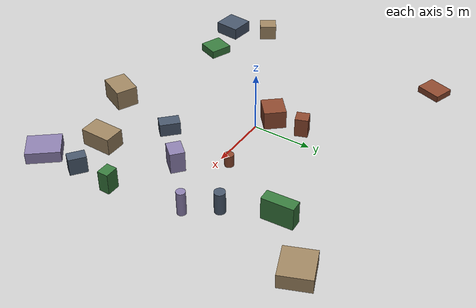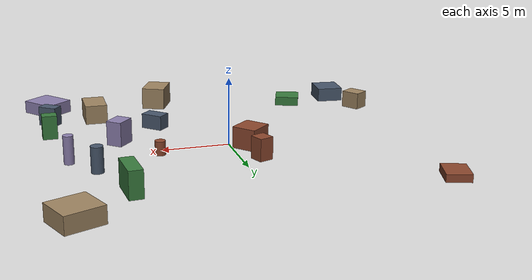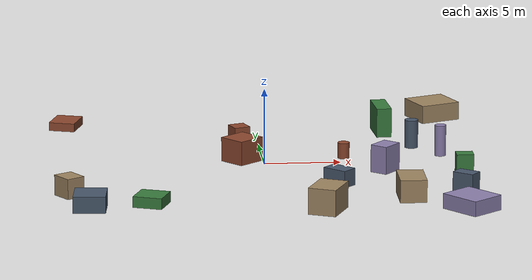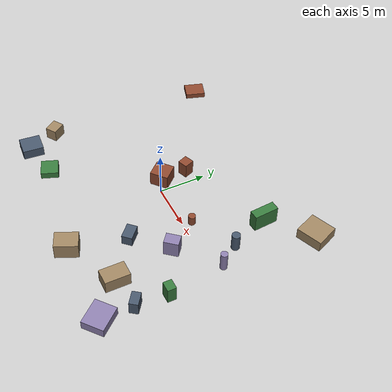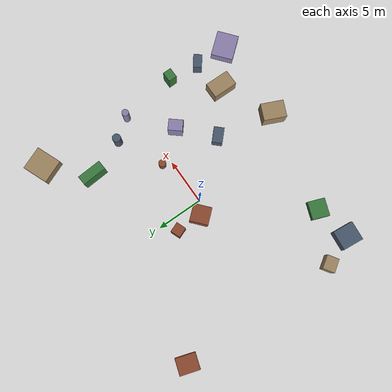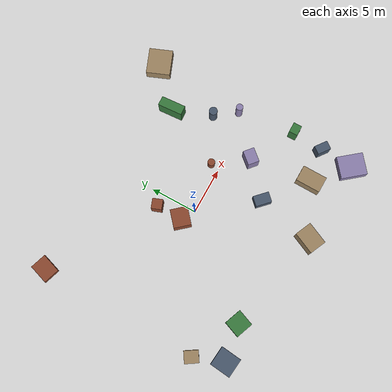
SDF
<sdf version="1.10">
 <world name="robotx_task1_uav_view">
  <gravity>0 0 -9.81</gravity>
  <physics name="physics" type="ode">
   <max_step_size>0.002</max_step_size>
   <real_time_factor>1.0</real_time_factor>
  </physics>
  <scene>
   <ambient>0.18 0.22 0.18 1.0</ambient>
   <background>0.35 0.55 0.40 1.0</background>
   <shadows>true</shadows>
   <grid>false</grid>
  </scene>
  <light name="sun" type="directional">
   <pose>0 0 300 0 0 0</pose>
   <diffuse>0.55 0.75 0.60 1.0</diffuse>
   <specular>0.28 0.45 0.32 1.0</specular>
   <direction>0.20 -0.06 -1.0</direction>
   <attenuation>
    <range>2500</range>
    <constant>0.85</constant>
    <linear>0.001</linear>
    <quadratic>0.00005</quadratic>
   </attenuation>
  </light>
  <plugin filename="gz-sim-physics-system" name="gz::sim::systems::Physics"/>
  <plugin filename="gz-sim-user-commands-system" name="gz::sim::systems::UserCommands"/>
  <plugin filename="gz-sim-scene-broadcaster-system" name="gz::sim::systems::SceneBroadcaster"/>
  <plugin filename="gz-sim-sensors-system" name="gz::sim::systems::Sensors">
   <render_engine>ogre2</render_engine>
  </plugin>
  <model name="scene_clutter_box_000">
   <static>true</static>
   <pose>12.336 11.165 0.623 0 0 -2.758723</pose>
   <link name="link">
    <visual name="v">
     <geometry><box><size>2.773 2.550 1.206</size></box></geometry>
     <material><ambient>0.45 0.38 0.32 1.0</ambient><diffuse>0.62 0.52 0.38 1.0</diffuse></material>
    </visual>
   </link>
  </model>
  <model name="scene_clutter_box_001">
   <static>true</static>
   <pose>-11.743 -10.054 0.562 0 0 -1.673037</pose>
   <link name="link">
    <visual name="v">
     <geometry><box><size>2.229 2.056 1.084</size></box></geometry>
     <material><ambient>0.18 0.22 0.28 1.0</ambient><diffuse>0.28 0.34 0.42 1.0</diffuse></material>
    </visual>
   </link>
  </model>
  <model name="scene_clutter_box_002">
   <static>true</static>
   <pose>-12.567 10.422 0.299 0 0 2.825719</pose>
   <link name="link">
    <visual name="v">
     <geometry><box><size>1.748 2.131 0.557</size></box></geometry>
     <material><ambient>0.35 0.16 0.12 1.0</ambient><diffuse>0.55 0.28 0.18 1.0</diffuse></material>
    </visual>
   </link>
  </model>
  <model name="scene_clutter_box_003">
   <static>true</static>
   <pose>-7.858 -9.418 0.378 0 0 2.776772</pose>
   <link name="link">
    <visual name="v">
     <geometry><box><size>1.898 1.848 0.715</size></box></geometry>
     <material><ambient>0.12 0.30 0.14 1.0</ambient><diffuse>0.22 0.48 0.24 1.0</diffuse></material>
    </visual>
   </link>
  </model>
  <model name="scene_clutter_box_004">
   <static>true</static>
   <pose>7.661 -2.432 0.927 0 0 0.864272</pose>
   <link name="link">
    <visual name="v">
     <geometry><box><size>1.532 1.198 1.815</size></box></geometry>
     <material><ambient>0.40 0.35 0.50 1.0</ambient><diffuse>0.55 0.50 0.68 1.0</diffuse></material>
    </visual>
   </link>
  </model>
  <model name="scene_clutter_box_005">
   <static>true</static>
   <pose>8.632 -8.985 0.750 0 0 -1.580799</pose>
   <link name="link">
    <visual name="v">
     <geometry><box><size>2.638 1.702 1.461</size></box></geometry>
     <material><ambient>0.45 0.38 0.32 1.0</ambient><diffuse>0.62 0.52 0.38 1.0</diffuse></material>
    </visual>
   </link>
  </model>
  <model name="scene_clutter_box_006">
   <static>true</static>
   <pose>4.387 -5.545 0.580 0 0 0.803129</pose>
   <link name="link">
    <visual name="v">
     <geometry><box><size>1.100 1.696 1.121</size></box></geometry>
     <material><ambient>0.18 0.22 0.28 1.0</ambient><diffuse>0.28 0.34 0.42 1.0</diffuse></material>
    </visual>
   </link>
  </model>
  <model name="scene_clutter_cyl_007">
   <static>true</static>
   <pose>5.293 0.944 0.572 0 0 -2.639756</pose>
   <link name="link">
    <visual name="v">
     <geometry><cylinder><radius>0.383</radius><length>1.043</length></cylinder></geometry>
     <material><ambient>0.35 0.16 0.12 1.0</ambient><diffuse>0.55 0.28 0.18 1.0</diffuse></material>
    </visual>
   </link>
  </model>
  <model name="scene_clutter_box_008">
   <static>true</static>
   <pose>8.444 7.424 0.992 0 0 -3.074564</pose>
   <link name="link">
    <visual name="v">
     <geometry><box><size>0.992 2.623 1.944</size></box></geometry>
     <material><ambient>0.12 0.30 0.14 1.0</ambient><diffuse>0.22 0.48 0.24 1.0</diffuse></material>
    </visual>
   </link>
  </model>
  <model name="scene_clutter_cyl_009">
   <static>true</static>
   <pose>11.686 1.098 1.072 0 0 -1.071349</pose>
   <link name="link">
    <visual name="v">
     <geometry><cylinder><radius>0.367</radius><length>2.045</length></cylinder></geometry>
     <material><ambient>0.40 0.35 0.50 1.0</ambient><diffuse>0.55 0.50 0.68 1.0</diffuse></material>
    </visual>
   </link>
  </model>
  <model name="scene_clutter_box_010">
   <static>true</static>
   <pose>-12.940 -6.859 0.684 0 0 -2.567814</pose>
   <link name="link">
    <visual name="v">
     <geometry><box><size>1.260 1.481 1.328</size></box></geometry>
     <material><ambient>0.45 0.38 0.32 1.0</ambient><diffuse>0.62 0.52 0.38 1.0</diffuse></material>
    </visual>
   </link>
  </model>
  <model name="scene_clutter_box_011">
   <static>true</static>
   <pose>12.179 -8.477 0.758 0 0 0.923093</pose>
   <link name="link">
    <visual name="v">
     <geometry><box><size>0.924 1.444 1.476</size></box></geometry>
     <material><ambient>0.18 0.22 0.28 1.0</ambient><diffuse>0.28 0.34 0.42 1.0</diffuse></material>
    </visual>
   </link>
  </model>
  <model name="scene_clutter_box_012">
   <static>true</static>
   <pose>-1.392 0.835 0.819 0 0 -0.856105</pose>
   <link name="link">
    <visual name="v">
     <geometry><box><size>1.840 1.954 1.598</size></box></geometry>
     <material><ambient>0.35 0.16 0.12 1.0</ambient><diffuse>0.55 0.28 0.18 1.0</diffuse></material>
    </visual>
   </link>
  </model>
  <model name="scene_clutter_box_013">
   <static>true</static>
   <pose>12.487 -5.094 0.918 0 0 -0.000097</pose>
   <link name="link">
    <visual name="v">
     <geometry><box><size>1.106 0.925 1.796</size></box></geometry>
     <material><ambient>0.12 0.30 0.14 1.0</ambient><diffuse>0.22 0.48 0.24 1.0</diffuse></material>
    </visual>
   </link>
  </model>
  <model name="scene_clutter_box_014">
   <static>true</static>
   <pose>12.088 -12.043 0.508 0 0 2.256561</pose>
   <link name="link">
    <visual name="v">
     <geometry><box><size>2.787 2.351 0.976</size></box></geometry>
     <material><ambient>0.40 0.35 0.50 1.0</ambient><diffuse>0.55 0.50 0.68 1.0</diffuse></material>
    </visual>
   </link>
  </model>
  <model name="scene_clutter_box_015">
   <static>true</static>
   <pose>3.069 -11.689 0.875 0 0 -1.996277</pose>
   <link name="link">
    <visual name="v">
     <geometry><box><size>2.440 1.830 1.711</size></box></geometry>
     <material><ambient>0.45 0.38 0.32 1.0</ambient><diffuse>0.62 0.52 0.38 1.0</diffuse></material>
    </visual>
   </link>
  </model>
  <model name="scene_clutter_cyl_016">
   <static>true</static>
   <pose>10.029 3.330 0.983 0 0 -2.812491</pose>
   <link name="link">
    <visual name="v">
     <geometry><cylinder><radius>0.441</radius><length>1.867</length></cylinder></geometry>
     <material><ambient>0.18 0.22 0.28 1.0</ambient><diffuse>0.28 0.34 0.42 1.0</diffuse></material>
    </visual>
   </link>
  </model>
  <model name="scene_clutter_box_017">
   <static>true</static>
   <pose>-1.369 3.602 0.847 0 0 0.357264</pose>
   <link name="link">
    <visual name="v">
     <geometry><box><size>1.075 1.097 1.655</size></box></geometry>
     <material><ambient>0.35 0.16 0.12 1.0</ambient><diffuse>0.55 0.28 0.18 1.0</diffuse></material>
    </visual>
   </link>
  </model>
  <model name="uav_dataset_camera">
   <static>false</static>
   <pose>0 0 26 0 0 0</pose>
   <plugin filename="librobotx_overhead_motion_plugin.dylib" name="robotx::OverheadMotionPlugin">
    <radius_x_m>12.13153</radius_x_m>
    <radius_y_m>10.50054</radius_y_m>
    <angular_speed_rad_s>0.067836</angular_speed_rad_s>
    <phase_rad>3.975350</phase_rad>
    <z_wobble_m>0.06162</z_wobble_m>
    <z_wobble_hz>0.06348</z_wobble_hz>
    <z_wobble_phase_rad>4.121397</z_wobble_phase_rad>
   </plugin>
   <link name="camera_link">
    <gravity>false</gravity>
    <sensor name="top_down_rgb" type="camera">
     <always_on>true</always_on>
     <update_rate>20</update_rate>
     <pose>0 0 0 0 1.57079632679 0</pose>
     <camera>
      <horizontal_fov>1.05</horizontal_fov>
      <image><width>1920</width><height>1080</height><format>R8G8B8</format></image>
      <clip><near>0.2</near><far>600</far></clip>
     </camera>
     <topic>/robotx/uav/camera/image_raw</topic>
     <visualize>true</visualize>
    </sensor>
   </link>
  </model>
 </world>
</sdf>
